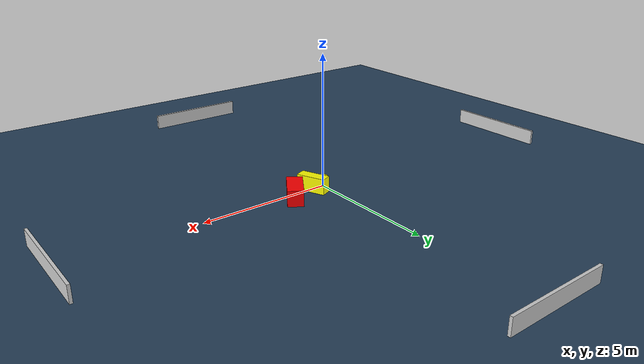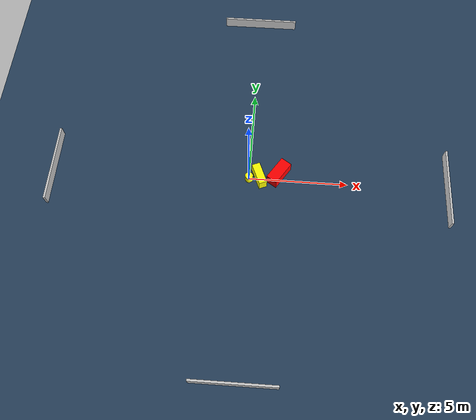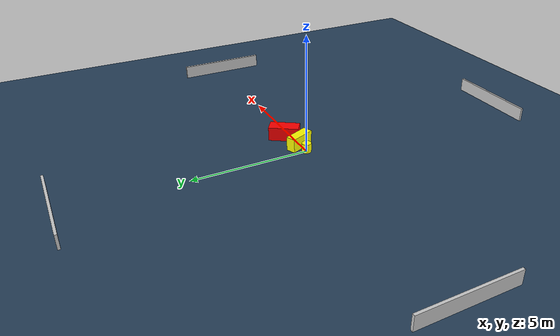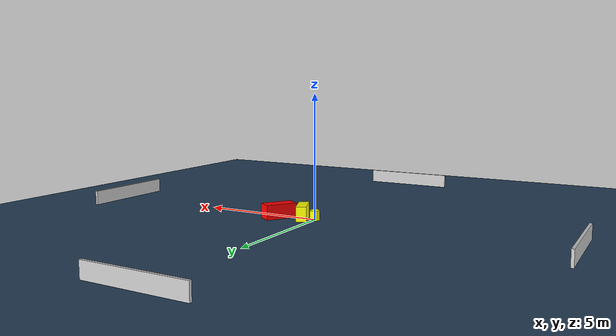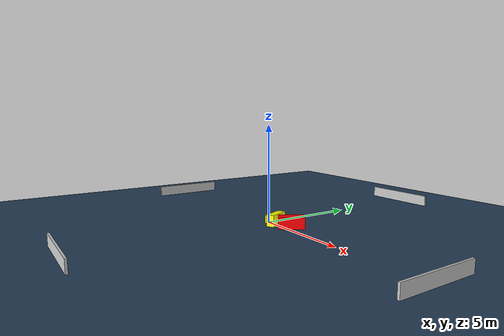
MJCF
<?xml version="1.0" ?>
<mujoco model="generated_environment">
  <option timestep="0.01" integrator="RK4" cone="elliptic"/>
  <default>
    <geom density="1"/>
  </default>
  <asset>
    <texture builtin="gradient" height="3072" name="skybox" rgb1="0.3 0.5 0.7" rgb2="0 0 0" type="skybox" width="512"/>
    <texture builtin="checker" height="300" name="groundplane" rgb1="0.2 0.3 0.4" rgb2="0.1 0.2 0.3" type="2d" width="300"/>
    <material name="groundplane" reflectance="0.2" texrepeat="5 5" texture="groundplane"/>
  </asset>
  <worldbody>
    <light dir="0 0 -1" directional="true" pos="0 0 1.5"/>
    <geom condim="3" friction="0.5 0.005 0.001" material="groundplane" name="floor" pos="0 0 0" size="0 0 0.05" type="plane"/>
    <body name="walls">
      <geom name="wall_1" condim="4" pos="-10.0 0.0 0.3" rgba="0.800000011920929 0.800000011920929 0.800000011920929 1.0" size="0.05 2.0 0.3" type="box"/>
      <geom name="wall_2" condim="4" pos="10.0 0.0 0.3" rgba="0.800000011920929 0.800000011920929 0.800000011920929 1.0" size="0.05 2.0 0.3" type="box"/>
      <geom name="wall_3" condim="4" pos="0.0 -10.0 0.3" rgba="0.800000011920929 0.800000011920929 0.800000011920929 1.0" size="2.0 0.05 0.3" type="box"/>
      <geom name="wall_4" condim="4" pos="0.0 10.0 0.3" rgba="0.800000011920929 0.800000011920929 0.800000011920929 1.0" size="2.0 0.05 0.3" type="box"/>
    </body>
    <body name="robot">
      <joint name="joint_x" type="slide" pos="0 0 0" axis="1 0 0"/>
      <joint name="joint_y" type="slide" pos="0 0 0" axis="0 1 0"/>
      <geom name="robot" type="cylinder" pos="0.0 0.0 0.2" size="0.2 0.2 0.0" mass="5.0" friction="1.0 0.005 0.0001" condim="4" rgba="1.0 1.0 0.0 1.0"/>
    </body>
    <body name="obstacle_1_movable">
      <geom name="obstacle_1_movable" condim="4" pos="0.5146525441755788 0.08132786365403694 0.3" euler="0 0 292.9121349555472" friction="0.0 0.005 0.001" rgba="1.0 1.0 0.0 1.0" size="0.554979409745392 0.20642861886755381 0.3" type="box" mass="0.1"/>
      <joint type="free"/>
    </body>
    <body name="obstacle_2_static">
      <geom name="obstacle_2_static" condim="4" pos="1.4933446891197601 0.306642586682857 0.3" euler="0 0 236.55691486510833" friction="0.0 0.005 0.001" rgba="1.0 0.0 0.0 1.0" size="0.6447142596137021 0.29563186312674616 0.3" type="box"/>
    </body>
  </worldbody>
  <actuator>
    <motor name="actuator_x" joint="joint_x" gear="1" ctrlrange="-1 1"/>
    <motor name="actuator_y" joint="joint_y" gear="1" ctrlrange="-1 1"/>
  </actuator>
</mujoco>
